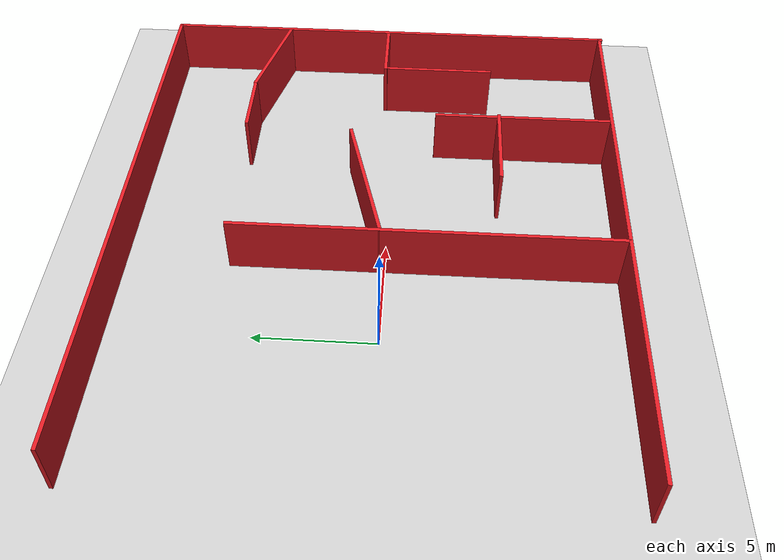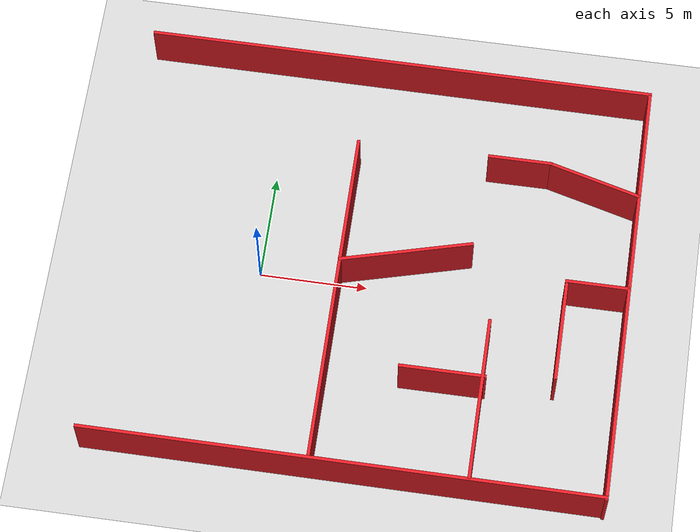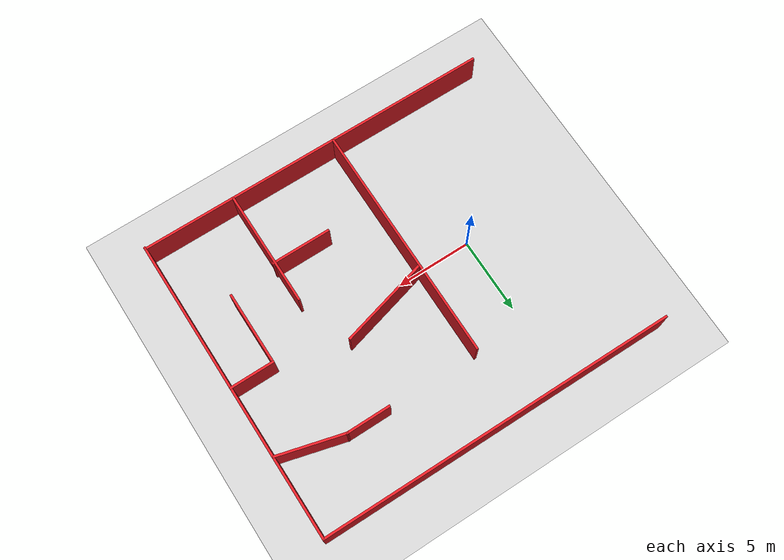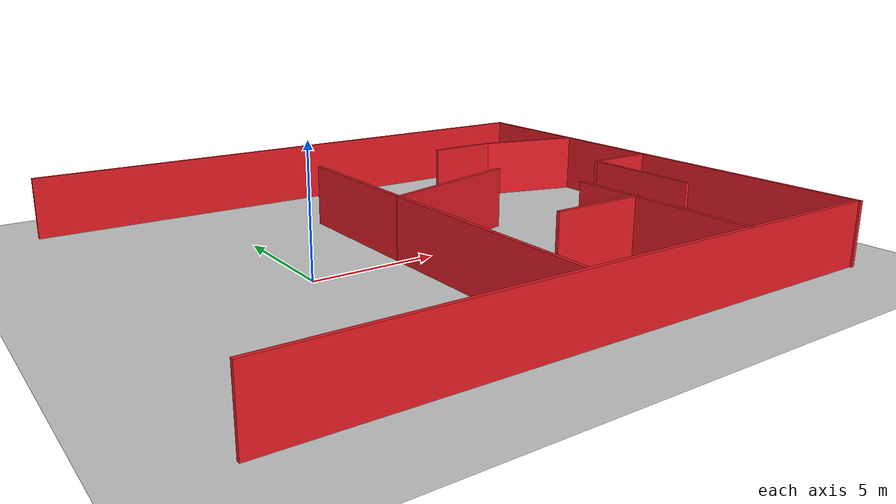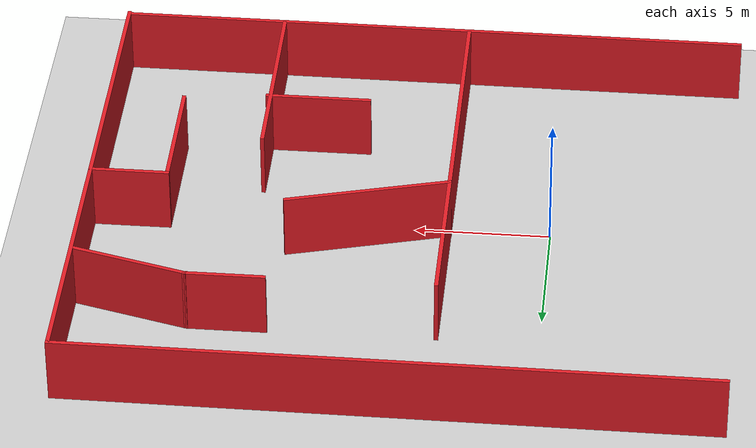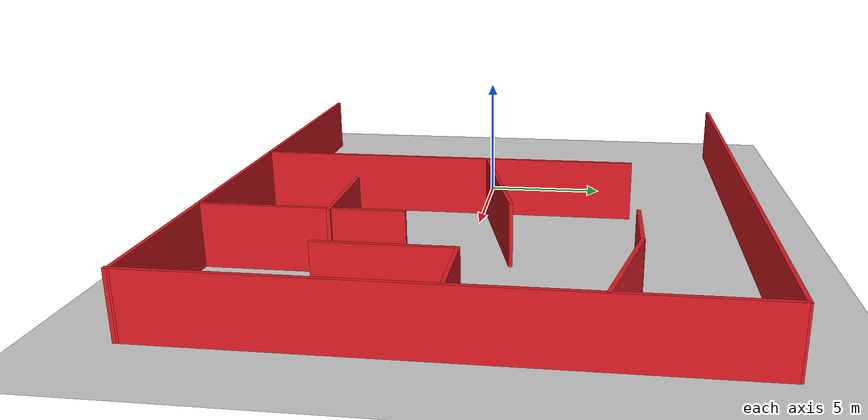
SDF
<sdf version="1.7">
 <world name="default">
  <light name="sun" type="directional">
   <pose>0 0 10 0 -0 0</pose>
   <diffuse>0.8 0.8 0.8 1</diffuse>
   <specular>0.2 0.2 0.2 1</specular>
   <attenuation>
    <range>1000</range>
    <constant>0.9</constant>
    <linear>0.01</linear>
    <quadratic>0.001</quadratic>
   </attenuation>
   <direction>-0.5 0.1 -0.9</direction>
   <spot><inner_angle>0</inner_angle><outer_angle>0</outer_angle><falloff>0</falloff></spot>
  </light>
  <model name="ground_plane">
   <static>1</static>
   <link name="link">
    <collision name="collision">
     <geometry><plane><normal>0 0 1</normal><size>100 100</size></plane></geometry>
     <surface><friction><ode><mu>100</mu><mu2>50</mu2></ode></friction></surface>
    </collision>
    <visual name="visual">
     <cast_shadows>0</cast_shadows>
     <geometry><plane><normal>0 0 1</normal><size>100 100</size></plane></geometry>
     <material>
      <script><uri>file://media/materials/scripts/gazebo.material</uri><name>Gazebo/Grey</name></script>
     </material>
    </visual>
   </link>
  </model>
  <gravity>0 0 -9.8</gravity>
  <magnetic_field>6e-06 2.3e-05 -4.2e-05</magnetic_field>
  <atmosphere type="adiabatic"/>
  <physics type="ode">
   <max_step_size>0.001</max_step_size>
   <real_time_factor>1</real_time_factor>
   <real_time_update_rate>1000</real_time_update_rate>
  </physics>
  <scene><ambient>0.4 0.4 0.4 1</ambient><background>0.7 0.7 0.7 1</background><shadows>1</shadows></scene>
  <audio><device>default</device></audio>
  <spherical_coordinates>
   <surface_model>EARTH_WGS84</surface_model>
   <latitude_deg>0</latitude_deg>
   <longitude_deg>0</longitude_deg>
   <elevation>0</elevation>
   <heading_deg>0</heading_deg>
  </spherical_coordinates>
  <model name="BuildingEnv">
   <link name="Wall_0">
    <pose>0.08905 11.8603 0 0 -0 0</pose>
    <visual name="Wall_0_Visual">
     <pose>0 0 1.25 0 -0 0</pose>
     <geometry><box><size>20.5 0.15 2.5</size></box></geometry>
     <material>
      <script><uri>file://media/materials/scripts/gazebo.material</uri><name>Gazebo/Grey</name></script>
      <ambient>0.878431 0.105882 0.141176 1</ambient>
      <shader type="pixel"/>
     </material>
     <meta><layer>0</layer></meta>
    </visual>
    <collision name="Wall_0_Collision">
     <pose>0 0 1.25 0 -0 0</pose>
     <geometry><box><size>20.5 0.15 2.5</size></box></geometry>
     <surface>
      <friction>
       <ode><mu>1</mu><mu2>1</mu2><fdir1>0 0 0</fdir1><slip1>0</slip1><slip2>0</slip2></ode>
       <torsional>
        <coefficient>1</coefficient>
        <patch_radius>0</patch_radius>
        <surface_radius>0</surface_radius>
        <use_patch_radius>1</use_patch_radius>
        <ode><slip>0</slip></ode>
       </torsional>
      </friction>
      <bounce><restitution_coefficient>0</restitution_coefficient><threshold>1e+06</threshold></bounce>
      <contact>
       <collide_without_contact>0</collide_without_contact>
       <collide_without_contact_bitmask>1</collide_without_contact_bitmask>
       <collide_bitmask>1</collide_bitmask>
       <ode>
        <soft_cfm>0</soft_cfm>
        <soft_erp>0.2</soft_erp>
        <kp>1e+13</kp>
        <kd>1</kd>
        <max_vel>0.01</max_vel>
        <min_depth>0</min_depth>
       </ode>
       <bullet>
        <split_impulse>1</split_impulse>
        <split_impulse_penetration_threshold>-0.01</split_impulse_penetration_threshold>
        <soft_cfm>0</soft_cfm>
        <soft_erp>0.2</soft_erp>
        <kp>1e+13</kp>
        <kd>1</kd>
       </bullet>
      </contact>
     </surface>
    </collision>
   </link>
   <link name="Wall_13">
    <pose>2.1545 -1.41675 0 0 -0 3.14159</pose>
    <visual name="Wall_13_Visual">
     <pose>0 0 1.25 0 -0 0</pose>
     <geometry><box><size>16 0.15 2.5</size></box></geometry>
     <material>
      <script><uri>file://media/materials/scripts/gazebo.material</uri><name>Gazebo/Grey</name></script>
      <ambient>0.878431 0.105882 0.141176 1</ambient>
      <shader type="pixel"/>
     </material>
     <meta><layer>0</layer></meta>
    </visual>
    <collision name="Wall_13_Collision">
     <pose>0 0 1.25 0 -0 0</pose>
     <geometry><box><size>16 0.15 2.5</size></box></geometry>
     <surface>
      <friction>
       <ode><mu>1</mu><mu2>1</mu2><fdir1>0 0 0</fdir1><slip1>0</slip1><slip2>0</slip2></ode>
       <torsional>
        <coefficient>1</coefficient>
        <patch_radius>0</patch_radius>
        <surface_radius>0</surface_radius>
        <use_patch_radius>1</use_patch_radius>
        <ode><slip>0</slip></ode>
       </torsional>
      </friction>
      <bounce><restitution_coefficient>0</restitution_coefficient><threshold>1e+06</threshold></bounce>
      <contact>
       <collide_without_contact>0</collide_without_contact>
       <collide_without_contact_bitmask>1</collide_without_contact_bitmask>
       <collide_bitmask>1</collide_bitmask>
       <ode>
        <soft_cfm>0</soft_cfm>
        <soft_erp>0.2</soft_erp>
        <kp>1e+13</kp>
        <kd>1</kd>
        <max_vel>0.01</max_vel>
        <min_depth>0</min_depth>
       </ode>
       <bullet>
        <split_impulse>1</split_impulse>
        <split_impulse_penetration_threshold>-0.01</split_impulse_penetration_threshold>
        <soft_cfm>0</soft_cfm>
        <soft_erp>0.2</soft_erp>
        <kp>1e+13</kp>
        <kd>1</kd>
       </bullet>
      </contact>
     </surface>
    </collision>
   </link>
   <link name="Wall_15">
    <pose>6.28482 5.76033 0 0 -0 3.14159</pose>
    <visual name="Wall_15_Visual">
     <pose>0 0 1.25 0 -0 0</pose>
     <geometry><box><size>7.75 0.15 2.5</size></box></geometry>
     <material>
      <script><uri>file://media/materials/scripts/gazebo.material</uri><name>Gazebo/Grey</name></script>
      <ambient>0.878431 0.105882 0.141176 1</ambient>
      <shader type="pixel"/>
     </material>
     <meta><layer>0</layer></meta>
    </visual>
    <collision name="Wall_15_Collision">
     <pose>0 0 1.25 0 -0 0</pose>
     <geometry><box><size>7.75 0.15 2.5</size></box></geometry>
     <surface>
      <friction>
       <ode><mu>1</mu><mu2>1</mu2><fdir1>0 0 0</fdir1><slip1>0</slip1><slip2>0</slip2></ode>
       <torsional>
        <coefficient>1</coefficient>
        <patch_radius>0</patch_radius>
        <surface_radius>0</surface_radius>
        <use_patch_radius>1</use_patch_radius>
        <ode><slip>0</slip></ode>
       </torsional>
      </friction>
      <bounce><restitution_coefficient>0</restitution_coefficient><threshold>1e+06</threshold></bounce>
      <contact>
       <collide_without_contact>0</collide_without_contact>
       <collide_without_contact_bitmask>1</collide_without_contact_bitmask>
       <collide_bitmask>1</collide_bitmask>
       <ode>
        <soft_cfm>0</soft_cfm>
        <soft_erp>0.2</soft_erp>
        <kp>1e+13</kp>
        <kd>1</kd>
        <max_vel>0.01</max_vel>
        <min_depth>0</min_depth>
       </ode>
       <bullet>
        <split_impulse>1</split_impulse>
        <split_impulse_penetration_threshold>-0.01</split_impulse_penetration_threshold>
        <soft_cfm>0</soft_cfm>
        <soft_erp>0.2</soft_erp>
        <kp>1e+13</kp>
        <kd>1</kd>
       </bullet>
      </contact>
     </surface>
    </collision>
   </link>
   <link name="Wall_17">
    <pose>5.21609 3.94233 0 0 0 -1.5708</pose>
    <visual name="Wall_17_Visual">
     <pose>0 0 1.25 0 -0 0</pose>
     <geometry><box><size>4 0.15 2.5</size></box></geometry>
     <material>
      <script><uri>file://media/materials/scripts/gazebo.material</uri><name>Gazebo/Grey</name></script>
      <ambient>0.878431 0.105882 0.141176 1</ambient>
      <shader type="pixel"/>
     </material>
     <meta><layer>0</layer></meta>
    </visual>
    <collision name="Wall_17_Collision">
     <pose>0 0 1.25 0 -0 0</pose>
     <geometry><box><size>4 0.15 2.5</size></box></geometry>
     <surface>
      <friction>
       <ode><mu>1</mu><mu2>1</mu2><fdir1>0 0 0</fdir1><slip1>0</slip1><slip2>0</slip2></ode>
       <torsional>
        <coefficient>1</coefficient>
        <patch_radius>0</patch_radius>
        <surface_radius>0</surface_radius>
        <use_patch_radius>1</use_patch_radius>
        <ode><slip>0</slip></ode>
       </torsional>
      </friction>
      <bounce><restitution_coefficient>0</restitution_coefficient><threshold>1e+06</threshold></bounce>
      <contact>
       <collide_without_contact>0</collide_without_contact>
       <collide_without_contact_bitmask>1</collide_without_contact_bitmask>
       <collide_bitmask>1</collide_bitmask>
       <ode>
        <soft_cfm>0</soft_cfm>
        <soft_erp>0.2</soft_erp>
        <kp>1e+13</kp>
        <kd>1</kd>
        <max_vel>0.01</max_vel>
        <min_depth>0</min_depth>
       </ode>
       <bullet>
        <split_impulse>1</split_impulse>
        <split_impulse_penetration_threshold>-0.01</split_impulse_penetration_threshold>
        <soft_cfm>0</soft_cfm>
        <soft_erp>0.2</soft_erp>
        <kp>1e+13</kp>
        <kd>1</kd>
       </bullet>
      </contact>
     </surface>
    </collision>
   </link>
   <link name="Wall_19">
    <pose>-5.29831 9.70522 0 0 0 -1.8326</pose>
    <visual name="Wall_19_Visual">
     <pose>0 0 1.25 0 -0 0</pose>
     <geometry><box><size>4.5 0.15 2.5</size></box></geometry>
     <material>
      <script><uri>file://media/materials/scripts/gazebo.material</uri><name>Gazebo/Grey</name></script>
      <ambient>0.878431 0.105882 0.141176 1</ambient>
      <shader type="pixel"/>
     </material>
     <meta><layer>0</layer></meta>
    </visual>
    <collision name="Wall_19_Collision">
     <pose>0 0 1.25 0 -0 0</pose>
     <geometry><box><size>4.5 0.15 2.5</size></box></geometry>
     <surface>
      <friction>
       <ode><mu>1</mu><mu2>1</mu2><fdir1>0 0 0</fdir1><slip1>0</slip1><slip2>0</slip2></ode>
       <torsional>
        <coefficient>1</coefficient>
        <patch_radius>0</patch_radius>
        <surface_radius>0</surface_radius>
        <use_patch_radius>1</use_patch_radius>
        <ode><slip>0</slip></ode>
       </torsional>
      </friction>
      <bounce><restitution_coefficient>0</restitution_coefficient><threshold>1e+06</threshold></bounce>
      <contact>
       <collide_without_contact>0</collide_without_contact>
       <collide_without_contact_bitmask>1</collide_without_contact_bitmask>
       <collide_bitmask>1</collide_bitmask>
       <ode>
        <soft_cfm>0</soft_cfm>
        <soft_erp>0.2</soft_erp>
        <kp>1e+13</kp>
        <kd>1</kd>
        <max_vel>0.01</max_vel>
        <min_depth>0</min_depth>
       </ode>
       <bullet>
        <split_impulse>1</split_impulse>
        <split_impulse_penetration_threshold>-0.01</split_impulse_penetration_threshold>
        <soft_cfm>0</soft_cfm>
        <soft_erp>0.2</soft_erp>
        <kp>1e+13</kp>
        <kd>1</kd>
       </bullet>
      </contact>
     </surface>
    </collision>
   </link>
   <link name="Wall_2">
    <pose>10.1398 0 0 0 0 -1.57531</pose>
    <visual name="Wall_2_Visual">
     <pose>0 0 1.25 0 -0 0</pose>
     <geometry><box><size>23.8709 0.15 2.5</size></box></geometry>
     <material>
      <script><uri>file://media/materials/scripts/gazebo.material</uri><name>Gazebo/Grey</name></script>
      <ambient>0.878431 0.105882 0.141176 1</ambient>
      <shader type="pixel"/>
     </material>
     <meta><layer>0</layer></meta>
    </visual>
    <collision name="Wall_2_Collision">
     <pose>0 0 1.25 0 -0 0</pose>
     <geometry><box><size>23.8709 0.15 2.5</size></box></geometry>
     <surface>
      <friction>
       <ode><mu>1</mu><mu2>1</mu2><fdir1>0 0 0</fdir1><slip1>0</slip1><slip2>0</slip2></ode>
       <torsional>
        <coefficient>1</coefficient>
        <patch_radius>0</patch_radius>
        <surface_radius>0</surface_radius>
        <use_patch_radius>1</use_patch_radius>
        <ode><slip>0</slip></ode>
       </torsional>
      </friction>
      <bounce><restitution_coefficient>0</restitution_coefficient><threshold>1e+06</threshold></bounce>
      <contact>
       <collide_without_contact>0</collide_without_contact>
       <collide_without_contact_bitmask>1</collide_without_contact_bitmask>
       <collide_bitmask>1</collide_bitmask>
       <ode>
        <soft_cfm>0</soft_cfm>
        <soft_erp>0.2</soft_erp>
        <kp>1e+13</kp>
        <kd>1</kd>
        <max_vel>0.01</max_vel>
        <min_depth>0</min_depth>
       </ode>
       <bullet>
        <split_impulse>1</split_impulse>
        <split_impulse_penetration_threshold>-0.01</split_impulse_penetration_threshold>
        <soft_cfm>0</soft_cfm>
        <soft_erp>0.2</soft_erp>
        <kp>1e+13</kp>
        <kd>1</kd>
       </bullet>
      </contact>
     </surface>
    </collision>
   </link>
   <link name="Wall_21">
    <pose>-5.86124 6.17933 0 0 0 -1.5708</pose>
    <visual name="Wall_21_Visual">
     <pose>0 0 1.25 0 -0 0</pose>
     <geometry><box><size>3 0.15 2.5</size></box></geometry>
     <material>
      <script><uri>file://media/materials/scripts/gazebo.material</uri><name>Gazebo/Grey</name></script>
      <ambient>0.878431 0.105882 0.141176 1</ambient>
      <shader type="pixel"/>
     </material>
     <meta><layer>0</layer></meta>
    </visual>
    <collision name="Wall_21_Collision">
     <pose>0 0 1.25 0 -0 0</pose>
     <geometry><box><size>3 0.15 2.5</size></box></geometry>
     <surface>
      <friction>
       <ode><mu>1</mu><mu2>1</mu2><fdir1>0 0 0</fdir1><slip1>0</slip1><slip2>0</slip2></ode>
       <torsional>
        <coefficient>1</coefficient>
        <patch_radius>0</patch_radius>
        <surface_radius>0</surface_radius>
        <use_patch_radius>1</use_patch_radius>
        <ode><slip>0</slip></ode>
       </torsional>
      </friction>
      <bounce><restitution_coefficient>0</restitution_coefficient><threshold>1e+06</threshold></bounce>
      <contact>
       <collide_without_contact>0</collide_without_contact>
       <collide_without_contact_bitmask>1</collide_without_contact_bitmask>
       <collide_bitmask>1</collide_bitmask>
       <ode>
        <soft_cfm>0</soft_cfm>
        <soft_erp>0.2</soft_erp>
        <kp>1e+13</kp>
        <kd>1</kd>
        <max_vel>0.01</max_vel>
        <min_depth>0</min_depth>
       </ode>
       <bullet>
        <split_impulse>1</split_impulse>
        <split_impulse_penetration_threshold>-0.01</split_impulse_penetration_threshold>
        <soft_cfm>0</soft_cfm>
        <soft_erp>0.2</soft_erp>
        <kp>1e+13</kp>
        <kd>1</kd>
       </bullet>
      </contact>
     </surface>
    </collision>
   </link>
   <link name="Wall_23">
    <pose>-0.442038 1.53707 0 0 -0 1.8326</pose>
    <visual name="Wall_23_Visual">
     <pose>0 0 1.25 0 -0 0</pose>
     <geometry><box><size>6.25 0.15 2.5</size></box></geometry>
     <material>
      <script><uri>file://media/materials/scripts/gazebo.material</uri><name>Gazebo/Grey</name></script>
      <ambient>0.878431 0.105882 0.141176 1</ambient>
      <shader type="pixel"/>
     </material>
     <meta><layer>0</layer></meta>
    </visual>
    <collision name="Wall_23_Collision">
     <pose>0 0 1.25 0 -0 0</pose>
     <geometry><box><size>6.25 0.15 2.5</size></box></geometry>
     <surface>
      <friction>
       <ode><mu>1</mu><mu2>1</mu2><fdir1>0 0 0</fdir1><slip1>0</slip1><slip2>0</slip2></ode>
       <torsional>
        <coefficient>1</coefficient>
        <patch_radius>0</patch_radius>
        <surface_radius>0</surface_radius>
        <use_patch_radius>1</use_patch_radius>
        <ode><slip>0</slip></ode>
       </torsional>
      </friction>
      <bounce><restitution_coefficient>0</restitution_coefficient><threshold>1e+06</threshold></bounce>
      <contact>
       <collide_without_contact>0</collide_without_contact>
       <collide_without_contact_bitmask>1</collide_without_contact_bitmask>
       <collide_bitmask>1</collide_bitmask>
       <ode>
        <soft_cfm>0</soft_cfm>
        <soft_erp>0.2</soft_erp>
        <kp>1e+13</kp>
        <kd>1</kd>
        <max_vel>0.01</max_vel>
        <min_depth>0</min_depth>
       </ode>
       <bullet>
        <split_impulse>1</split_impulse>
        <split_impulse_penetration_threshold>-0.01</split_impulse_penetration_threshold>
        <soft_cfm>0</soft_cfm>
        <soft_erp>0.2</soft_erp>
        <kp>1e+13</kp>
        <kd>1</kd>
       </bullet>
      </contact>
     </surface>
    </collision>
   </link>
   <link name="Wall_25">
    <pose>0.026345 10.4346 0 0 0 -1.5708</pose>
    <visual name="Wall_25_Visual">
     <pose>0 0 1.25 0 -0 0</pose>
     <geometry><box><size>3 0.15 2.5</size></box></geometry>
     <material>
      <script><uri>file://media/materials/scripts/gazebo.material</uri><name>Gazebo/Grey</name></script>
      <ambient>0.878431 0.105882 0.141176 1</ambient>
      <shader type="pixel"/>
     </material>
     <meta><layer>0</layer></meta>
    </visual>
    <collision name="Wall_25_Collision">
     <pose>0 0 1.25 0 -0 0</pose>
     <geometry><box><size>3 0.15 2.5</size></box></geometry>
     <surface>
      <friction>
       <ode><mu>1</mu><mu2>1</mu2><fdir1>0 0 0</fdir1><slip1>0</slip1><slip2>0</slip2></ode>
       <torsional>
        <coefficient>1</coefficient>
        <patch_radius>0</patch_radius>
        <surface_radius>0</surface_radius>
        <use_patch_radius>1</use_patch_radius>
        <ode><slip>0</slip></ode>
       </torsional>
      </friction>
      <bounce><restitution_coefficient>0</restitution_coefficient><threshold>1e+06</threshold></bounce>
      <contact>
       <collide_without_contact>0</collide_without_contact>
       <collide_without_contact_bitmask>1</collide_without_contact_bitmask>
       <collide_bitmask>1</collide_bitmask>
       <ode>
        <soft_cfm>0</soft_cfm>
        <soft_erp>0.2</soft_erp>
        <kp>1e+13</kp>
        <kd>1</kd>
        <max_vel>0.01</max_vel>
        <min_depth>0</min_depth>
       </ode>
       <bullet>
        <split_impulse>1</split_impulse>
        <split_impulse_penetration_threshold>-0.01</split_impulse_penetration_threshold>
        <soft_cfm>0</soft_cfm>
        <soft_erp>0.2</soft_erp>
        <kp>1e+13</kp>
        <kd>1</kd>
       </bullet>
      </contact>
     </surface>
    </collision>
   </link>
   <link name="Wall_27">
    <pose>2.5136 9.00961 0 0 -0 0</pose>
    <visual name="Wall_27_Visual">
     <pose>0 0 1.25 0 -0 0</pose>
     <geometry><box><size>4.8035 0.15 2.5</size></box></geometry>
     <material>
      <script><uri>file://media/materials/scripts/gazebo.material</uri><name>Gazebo/Grey</name></script>
      <ambient>0.878431 0.105882 0.141176 1</ambient>
      <shader type="pixel"/>
     </material>
     <meta><layer>0</layer></meta>
    </visual>
    <collision name="Wall_27_Collision">
     <pose>0 0 1.25 0 -0 0</pose>
     <geometry><box><size>4.8035 0.15 2.5</size></box></geometry>
     <surface>
      <friction>
       <ode><mu>1</mu><mu2>1</mu2><fdir1>0 0 0</fdir1><slip1>0</slip1><slip2>0</slip2></ode>
       <torsional>
        <coefficient>1</coefficient>
        <patch_radius>0</patch_radius>
        <surface_radius>0</surface_radius>
        <use_patch_radius>1</use_patch_radius>
        <ode><slip>0</slip></ode>
       </torsional>
      </friction>
      <bounce><restitution_coefficient>0</restitution_coefficient><threshold>1e+06</threshold></bounce>
      <contact>
       <collide_without_contact>0</collide_without_contact>
       <collide_without_contact_bitmask>1</collide_without_contact_bitmask>
       <collide_bitmask>1</collide_bitmask>
       <ode>
        <soft_cfm>0</soft_cfm>
        <soft_erp>0.2</soft_erp>
        <kp>1e+13</kp>
        <kd>1</kd>
        <max_vel>0.01</max_vel>
        <min_depth>0</min_depth>
       </ode>
       <bullet>
        <split_impulse>1</split_impulse>
        <split_impulse_penetration_threshold>-0.01</split_impulse_penetration_threshold>
        <soft_cfm>0</soft_cfm>
        <soft_erp>0.2</soft_erp>
        <kp>1e+13</kp>
        <kd>1</kd>
       </bullet>
      </contact>
     </surface>
    </collision>
   </link>
   <link name="Wall_4">
    <pose>-10.2102 0 0 0 0 -1.57531</pose>
    <visual name="Wall_4_Visual">
     <pose>0 0 1.25 0 -0 0</pose>
     <geometry><box><size>23.8709 0.15 2.5</size></box></geometry>
     <material>
      <script><uri>file://media/materials/scripts/gazebo.material</uri><name>Gazebo/Grey</name></script>
      <ambient>0.878431 0.105882 0.141176 1</ambient>
      <shader type="pixel"/>
     </material>
     <meta><layer>0</layer></meta>
    </visual>
    <collision name="Wall_4_Collision">
     <pose>0 0 1.25 0 -0 0</pose>
     <geometry><box><size>23.8709 0.15 2.5</size></box></geometry>
     <surface>
      <friction>
       <ode><mu>1</mu><mu2>1</mu2><fdir1>0 0 0</fdir1><slip1>0</slip1><slip2>0</slip2></ode>
       <torsional>
        <coefficient>1</coefficient>
        <patch_radius>0</patch_radius>
        <surface_radius>0</surface_radius>
        <use_patch_radius>1</use_patch_radius>
        <ode><slip>0</slip></ode>
       </torsional>
      </friction>
      <bounce><restitution_coefficient>0</restitution_coefficient><threshold>1e+06</threshold></bounce>
      <contact>
       <collide_without_contact>0</collide_without_contact>
       <collide_without_contact_bitmask>1</collide_without_contact_bitmask>
       <collide_bitmask>1</collide_bitmask>
       <ode>
        <soft_cfm>0</soft_cfm>
        <soft_erp>0.2</soft_erp>
        <kp>1e+13</kp>
        <kd>1</kd>
        <max_vel>0.01</max_vel>
        <min_depth>0</min_depth>
       </ode>
       <bullet>
        <split_impulse>1</split_impulse>
        <split_impulse_penetration_threshold>-0.01</split_impulse_penetration_threshold>
        <soft_cfm>0</soft_cfm>
        <soft_erp>0.2</soft_erp>
        <kp>1e+13</kp>
        <kd>1</kd>
       </bullet>
      </contact>
     </surface>
    </collision>
   </link>
   <static>1</static>
   <pose>5.14087 0.546124 0 0 0 -1.5708</pose>
  </model>
 </world>
</sdf>
